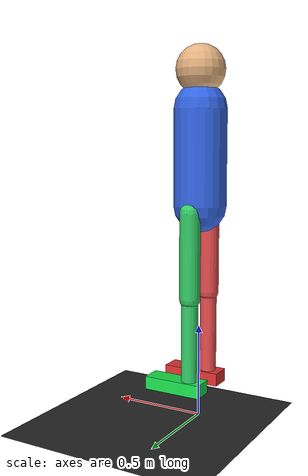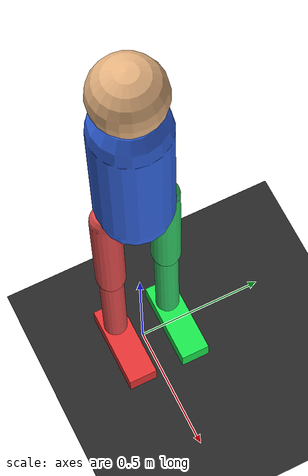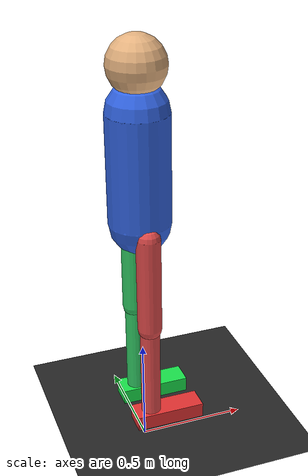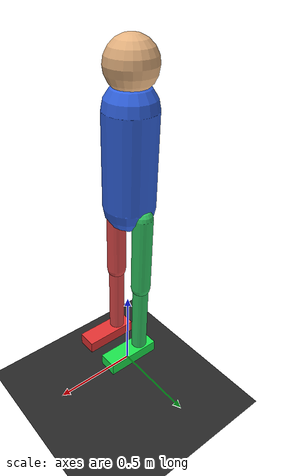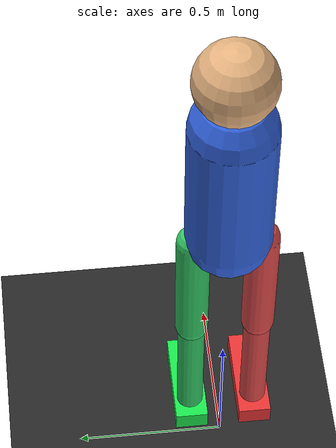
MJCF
<mujoco model="simple_humanoid">
  <compiler angle="degree" coordinate="local"/>
  <option timestep="0.002" gravity="0 0 -9.81"/>

  <default>
    <joint damping="1.0" armature="0.01"/>
    <geom friction="1.0 0.005 0.0001" density="1000"/>
    <motor ctrlrange="-100 100"/>
  </default>

  <asset>
    <texture name="grid" type="2d" builtin="checker" width="512" height="512"
             rgb1="0.1 0.1 0.1" rgb2="0.2 0.2 0.2"/>
    <material name="gridmat" texture="grid" texrepeat="8 8" reflectance="0.2"/>
  </asset>

  <worldbody>
    <light pos="0 0 4" dir="0 0 -1"/>
    <geom name="ground" type="plane" size="5 5 0.1" material="gridmat"/>

    <body name="torso" pos="0 0 1.4">
      <freejoint name="root"/>
      <geom name="torso_geom" type="capsule" fromto="0 0 -0.25 0 0 0.25" size="0.14" rgba="0.2 0.4 0.9 1"/>

      <body name="head" pos="0 0 0.45">
        <geom name="head_geom" type="sphere" size="0.13" rgba="0.9 0.7 0.5 1"/>
      </body>

      <body name="left_upper_leg" pos="0 0.11 -0.28">
        <joint name="left_hip" type="hinge" axis="0 1 0" range="-45 45"/>
        <geom name="left_upper_leg_geom" type="capsule" fromto="0 0 0 0 0 -0.45" size="0.055" rgba="0.2 0.8 0.4 1"/>

        <body name="left_lower_leg" pos="0 0 -0.45">
          <joint name="left_knee" type="hinge" axis="0 1 0" range="-90 10"/>
          <geom name="left_lower_leg_geom" type="capsule" fromto="0 0 0 0 0 -0.45" size="0.045" rgba="0.2 0.8 0.4 1"/>

          <body name="left_foot" pos="0.08 0 -0.48">
            <joint name="left_ankle" type="hinge" axis="0 1 0" range="-30 30"/>
            <geom name="left_foot_geom" type="box" size="0.16 0.055 0.035" rgba="0.1 0.9 0.3 1"/>
          </body>
        </body>
      </body>

      <body name="right_upper_leg" pos="0 -0.11 -0.28">
        <joint name="right_hip" type="hinge" axis="0 1 0" range="-45 45"/>
        <geom name="right_upper_leg_geom" type="capsule" fromto="0 0 0 0 0 -0.45" size="0.055" rgba="0.9 0.3 0.3 1"/>

        <body name="right_lower_leg" pos="0 0 -0.45">
          <joint name="right_knee" type="hinge" axis="0 1 0" range="-90 10"/>
          <geom name="right_lower_leg_geom" type="capsule" fromto="0 0 0 0 0 -0.45" size="0.045" rgba="0.9 0.3 0.3 1"/>

          <body name="right_foot" pos="0.08 0 -0.48">
            <joint name="right_ankle" type="hinge" axis="0 1 0" range="-30 30"/>
            <geom name="right_foot_geom" type="box" size="0.16 0.055 0.035" rgba="0.9 0.2 0.2 1"/>
          </body>
        </body>
      </body>
    </body>
  </worldbody>

  <actuator>
    <motor name="left_hip_motor" joint="left_hip" gear="60"/>
    <motor name="left_knee_motor" joint="left_knee" gear="60"/>
    <motor name="left_ankle_motor" joint="left_ankle" gear="30"/>

    <motor name="right_hip_motor" joint="right_hip" gear="60"/>
    <motor name="right_knee_motor" joint="right_knee" gear="60"/>
    <motor name="right_ankle_motor" joint="right_ankle" gear="30"/>
  </actuator>
</mujoco>
